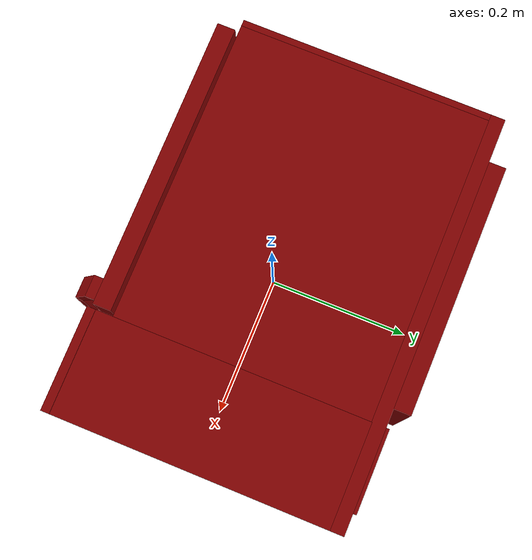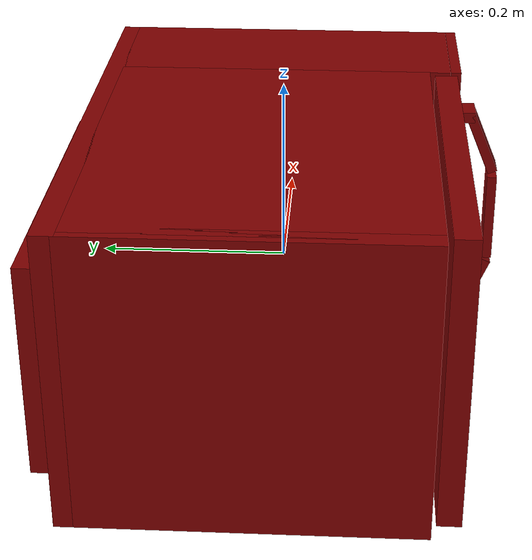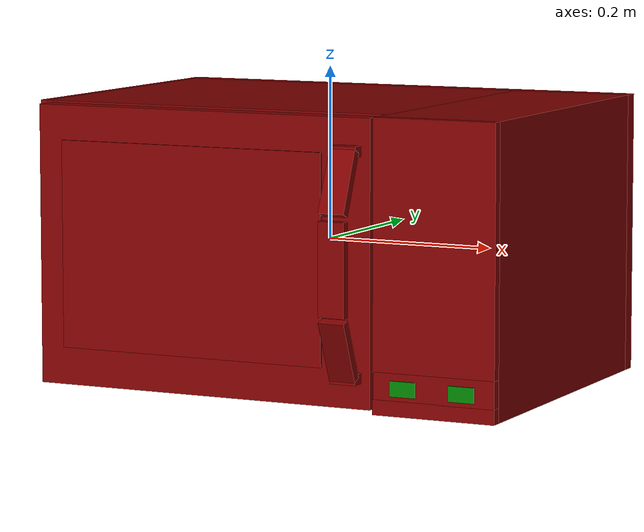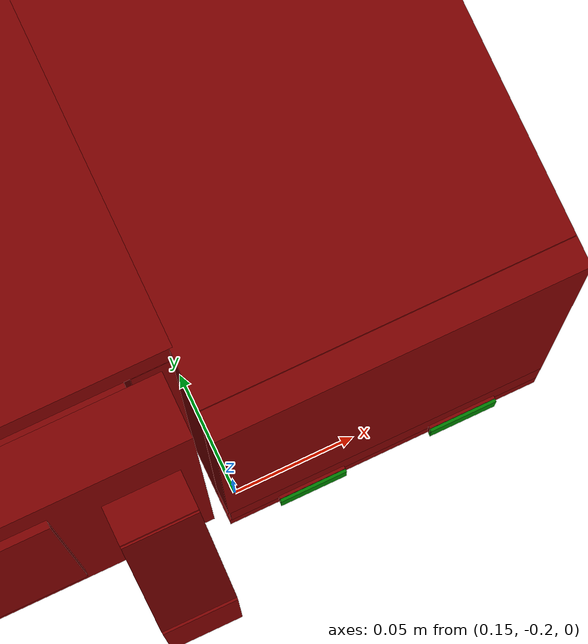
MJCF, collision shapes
<?xml version='1.0' encoding='UTF-8'?>
<mujoco model="model">
  <option timestep="0.002" gravity="0.0 0.0 -9.81"/>
  <compiler angle="radian"/>
  <asset>
    <mesh file="visuals/door.obj" name="door_vis"/>
    <mesh file="visuals/door_Clear.obj" name="door_Clear_vis"/>
    <mesh file="visuals/Body001.obj" name="Body001_vis"/>
    <mesh file="visuals/Button001.obj" name="Button001_vis"/>
    <mesh file="visuals/Button002.obj" name="Button002_vis"/>
    <mesh file="visuals/Disc001.obj" name="Disc001_vis"/>
    <texture file="visuals/T_BC001.png" name="Body001_material" type="2d"/>
    <material name="Body001_material" rgba="1 1 1 1.0" texture="Body001_material" shininess="0.5" specular="2"/>
    <texture file="visuals/T_BC001.png" name="door_material" type="2d"/>
    <material name="door_material" rgba="1 1 1 1.0" texture="door_material" shininess="0.5" specular="3"/>
    <texture file="visuals/T_BC001.png" name="door_Clear_material" type="2d"/>
    <material name="door_Clear_material" rgba="1 1 1 0.800000011920929" texture="door_Clear_material" shininess="0.5" specular="1"/>
    <texture file="visuals/T_BC001.png" name="Button001_material" type="2d"/>
    <material name="Button001_material" rgba="1 1 1 1.0" texture="Button001_material" shininess="0.5" specular="1"/>
    <texture file="visuals/T_BC001.png" name="Button002_material" type="2d"/>
    <material name="Button002_material" rgba="1 1 1 1.0" texture="Button002_material" shininess="0.5" specular="1"/>
    <texture file="visuals/T_BC001.png" name="Disc001_material" type="2d"/>
    <material name="Disc001_material" rgba="1 1 1 1.0" texture="Disc001_material" shininess="0.5" specular="2"/>
  </asset>
  <default>
    <default class="visual">
      <geom conaffinity="0" contype="0" group="1" type="mesh"/>
    </default>
    <default class="collision">
      <geom group="0" rgba="0.5 0 0 0.5"/>
    </default>
    <default class="spawn">
      <geom group="0" rgba="1 1 1 0.5" contype="0" conaffinity="0"/>
      <site group="0" rgba="1 1 1 0.5"/>
    </default>
    <default class="region">
      <geom group="1" conaffinity="0" contype="0" rgba="0 1 0 0"/>
    </default>
  </default>
  <worldbody>
    <body>
      <body name="object">
        <geom class="collision" type="cylinder" pos="-0.07324843 0.03805110 -0.14044811" size="0.13704505562782288 0.0017477256478741765" quat="1.0 0.0 0.0 0.0" name="tray" rgba="0 1 0 0.5"/>
        <geom class="collision" type="box" pos="0.18382721 -0.20007991 -0.13133727" size="0.015107166953384876 0.000660011894069612 0.008602473884820938" quat="1.0 0.0 0.0 0.0" name="start_button" rgba="0.0 0.5 0 0.5"/>
        <geom class="collision" type="box" pos="0.25323987 -0.19998639 -0.13162725" size="0.015107174403965473 0.0006600121269002557 0.008602479472756386" quat="1.0 0.0 0.0 0.0" name="stop_button" rgba="0.0 0.5 0 0.5"/>
        <geom mesh="Body001_vis" type="mesh" solimp="0.998 0.998 0.001" solref="0.001 1" friction="0.95 0.3 0.1" class="visual" material="Body001_material"/>
        <geom class="collision" type="box" pos="0.00000004 0.20266040 -0.00000001" size="0.2904612720012665 0.011859133839607239 0.1624961495399475" quat="1.0 0.0 0.0 0.0"/>
        <geom class="collision" type="box" pos="-0.27954954 0.01697671 -0.00000001" size="0.010911776684224606 0.1775674670934677 0.1624961495399475" quat="1.0 0.0 0.0 0.0"/>
        <geom class="collision" type="box" pos="0.21849781 0.00554032 -0.00000001" size="0.07196354120969772 0.18999142944812775 0.1624961495399475" quat="1.0 0.0 0.0 0.0"/>
        <geom class="collision" type="box" pos="-0.06689211 0.01697671 0.14772351" size="0.2147742360830307 0.1775675117969513 0.014772647991776466" quat="1.0 0.0 0.0 0.0"/>
        <geom class="collision" type="box" pos="-0.06689211 0.01697671 -0.15698072" size="0.2147742360830307 0.1775675117969513 0.005515656433999538" quat="1.0 0.0 0.0 0.0"/>
        <geom class="collision" type="box" pos="-0.06689211 -0.14003238 -0.14820182" size="0.2147742211818695 0.020558403804898262 0.0031589774880558252" quat="1.0 0.0 0.0 0.0"/>
        <geom class="collision" type="box" pos="0.13958152 0.02198177 -0.01441338" size="0.009200960397720337 0.18257254362106323 0.14583511650562286" quat="1.0 0.0 0.0 0.0"/>
        <geom class="collision" type="box" pos="-0.06690720 0.22815894 -0.01087267" size="0.18198102712631226 0.015185004100203514 0.1172899380326271" quat="1.0 0.0 0.0 0.0"/>
        <geom class="collision" type="box" pos="0.20110795 0.21847937 0.05369452" size="0.05945794656872749 0.004956836812198162 0.050317972898483276" quat="1.0 0.0 0.0 0.0"/>
        <geom class="collision" type="box" pos="0.21849781 -0.19067646 0.02369668" size="0.07196351885795593 0.005959788337349892 0.13879945874214172" quat="1.0 0.0 0.0 0.0"/>
        <geom class="collision" type="box" pos="0.21849781 -0.19067643 -0.15389852" size="0.07196292281150818 0.00595976784825325 0.008597652427852154" quat="1.0 0.0 0.0 0.0"/>
        <geom class="collision" type="box" pos="0.21887666 -0.19067646 -0.13034482" size="0.07158446311950684 0.0059597911313176155 0.015450281091034412" quat="1.0 0.0 0.0 0.0"/>
        <body name="door">
          <joint axis="0.0 0.0 1.0" pos="-0.27286899 -0.18031315 -0.00008346" limited="true" name="microjoint" range="-1.5707963267948966 0.0" type="hinge" damping="1" frictionloss="1" armature=".01" stiffness="0.05"/>
          <geom mesh="door_vis" type="mesh" solimp="0.998 0.998 0.001" solref="0.001 1" friction="0.95 0.3 0.1" class="visual" material="door_material"/>
          <geom class="collision" type="box" pos="-0.08014353 -0.19007581 0.00276303" size="0.16303670406341553 0.00496436282992363 0.11850522458553314" quat="1.0 0.0 0.0 0.0"/>
          <geom class="collision" type="box" pos="0.11772315 -0.20452338 0.12517025" size="0.015303336083889008 0.007705146446824074 0.0061109187081456184" quat="1.0 0.0 0.0 0.0"/>
          <geom class="collision" type="box" pos="0.11772315 -0.20452338 -0.12313493" size="0.015303348191082478 0.007705146446824074 0.0061109187081456184" quat="1.0 0.0 0.0 0.0"/>
          <geom class="collision" type="box" pos="0.11772315 -0.22184880 -0.09026201" size="0.005530778784304857 0.01530337892472744 0.036429353058338165" quat="0.6934393644332886 0.1383538842201233 0.1383538842201233 -0.6934394240379333"/>
          <geom class="collision" type="box" pos="0.11772315 -0.22184880 0.09228242" size="0.005530777387320995 0.01530337892472744 0.036429353058338165" quat="0.13835375010967255 0.6934393644332886 -0.6934394836425781 0.1383538544178009"/>
          <geom class="collision" type="box" pos="0.11772315 -0.23581670 0.00000577" size="0.015303377993404865 0.0055307792499661446 0.052238501608371735" quat="1.0 0.0 0.0 0.0" name="door_handle_main"/>
          <geom class="collision" type="box" pos="-0.06616011 -0.17911292 0.00104085" size="0.2072877287864685 0.012750186957418919 0.15977053344249725" quat="1.0 0.0 0.0 0.0" name="door_main"/>
          <body name="door_Clear">
            <geom mesh="door_Clear_vis" type="mesh" solimp="0.998 0.998 0.001" solref="0.001 1" friction="0.95 0.3 0.1" class="visual" material="door_Clear_material"/>
            <geom class="collision" type="box" pos="-0.08014353 -0.19007581 0.00276303" size="0.16303670406341553 0.00496436282992363 0.11850522458553314" quat="1.0 0.0 0.0 0.0"/>
          </body>
        </body>
        <body name="Button001">
          <joint axis="0.0 1.0 0.0" pos="0.18382721 -0.19736301 -0.13156253" limited="true" name="Button001_joint" range="0.0 0.003" type="slide" damping="1" frictionloss="1" armature=".01" stiffness="0.05"/>
          <geom mesh="Button001_vis" type="mesh" solimp="0.998 0.998 0.001" solref="0.001 1" friction="0.95 0.3 0.1" class="visual" material="Button001_material"/>
          <geom class="collision" type="box" pos="0.18382721 -0.19861876 -0.13133727" size="0.015107150189578533 0.0006600113702006638 0.008602462708950043" quat="1.0 0.0 0.0 0.0"/>
        </body>
        <body name="Button002">
          <joint axis="0.0 1.0 0.0" pos="0.25323987 -0.19736301 -0.13162725" limited="true" name="Button002_joint" range="0.0 0.003" type="slide" damping="1" frictionloss="1" armature=".01" stiffness="0.05"/>
          <geom mesh="Button002_vis" type="mesh" solimp="0.998 0.998 0.001" solref="0.001 1" friction="0.95 0.3 0.1" class="visual" material="Button002_material"/>
          <geom class="collision" type="box" pos="0.25323987 -0.19855965 -0.13162725" size="0.015107158571481705 0.0006600116030313075 0.00860246829688549" quat="1.0 0.0 0.0 0.0"/>
        </body>
        <body name="Disc001">
          <joint axis="0.0 0.0 1.0" pos="-0.07324843 0.03805110 -0.14556630" limited="false" name="Disc001_joint" range="0 360" type="hinge" damping="1" frictionloss="1" armature=".01" stiffness="0.05"/>
          <geom mesh="Disc001_vis" type="mesh" solimp="0.998 0.998 0.001" solref="0.001 1" friction="0.95 0.3 0.1" class="visual" material="Disc001_material"/>
          <geom class="collision" type="cylinder" pos="-0.07324843 0.03805110 -0.14693730" size="0.13704505562782288 0.0031721177510917187" quat="1.0 0.0 0.0 0.0"/>
        </body>
        <geom class="region" name="reg_int" type="box" pos="-0.06876207 0.01309552 -0.0034534650000000028" size="0.19834524999999997 0.17468628 0.136246935"/>
        <geom class="region" name="reg_main" type="box" pos="-9.999999994736442e-09 0.023330500000000004 0.0" size="0.29146133 0.22101345 0.16349615"/>
      <geom class="region" name="reg_tray" type="cylinder" pos="-0.07324843 0.0380511 -0.002953457176062893" size="0.13704505562782288 0.1347469271760629"/></body>
    </body>
  </worldbody>
  <actuator>
    <motor name="microjoint_actuator" joint="microjoint" gear="10"/>
    <motor name="Button001_joint_actuator" joint="Button001_joint" gear="0.5"/>
    <motor name="Button002_joint_actuator" joint="Button002_joint" gear="0.5"/>
    <motor name="Disc001_joint_actuator" joint="Disc001_joint" gear="20"/>
  </actuator>
</mujoco>
